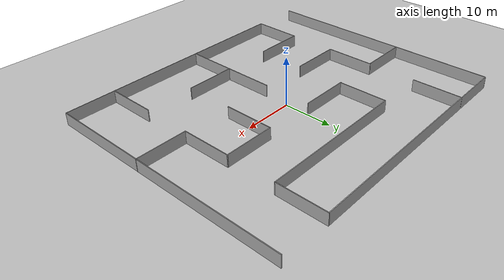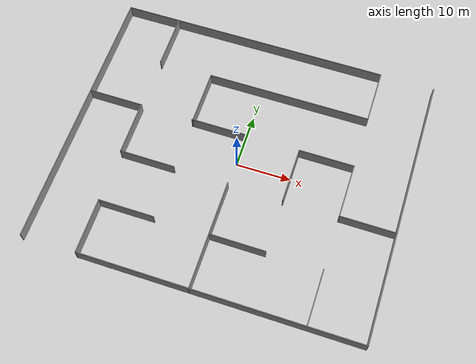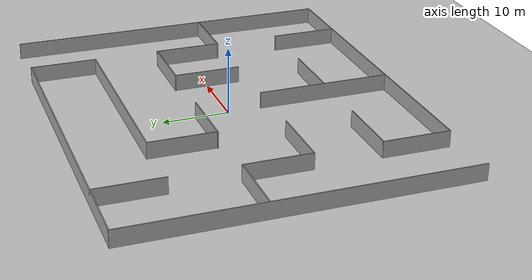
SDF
<sdf version="1.7">
 <world name="default">
  <model name="ground_plane">
   <static>1</static>
   <link name="link">
    <collision name="collision">
     <geometry><plane><normal>0 0 1</normal><size>100 100</size></plane></geometry>
     <surface>
      <contact><collide_bitmask>65535</collide_bitmask></contact>
      <friction><ode><mu>100</mu><mu2>50</mu2></ode></friction>
     </surface>
    </collision>
    <visual name="visual">
     <cast_shadows>0</cast_shadows>
     <geometry><plane><normal>0 0 1</normal><size>100 100</size></plane></geometry>
     <material>
      <script><uri>file://media/materials/scripts/gazebo.material</uri><name>Gazebo/Grey</name></script>
     </material>
    </visual>
   </link>
  </model>
  <model name="maze">
   <link name="Wall_0">
    <pose>-30 0 0 0 -0 1.5708</pose>
    <visual name="Wall_0_Visual">
     <pose>0 0 1.25 0 -0 0</pose>
     <geometry><box><size>50.15 0.15 2.5</size></box></geometry>
     <material>
      <script><uri>file://media/materials/scripts/gazebo.material</uri><name>Gazebo/Grey</name></script>
      <ambient>1 1 1 1</ambient>
      <shader type="pixel"/>
     </material>
     <meta><layer>0</layer></meta>
    </visual>
    <collision name="Wall_0_Collision">
     <pose>0 0 1.25 0 -0 0</pose>
     <geometry><box><size>50.15 0.15 2.5</size></box></geometry>
     <surface>
      <friction>
       <ode><mu>1</mu><mu2>1</mu2><fdir1>0 0 0</fdir1><slip1>0</slip1><slip2>0</slip2></ode>
       <torsional>
        <coefficient>1</coefficient>
        <patch_radius>0</patch_radius>
        <surface_radius>0</surface_radius>
        <use_patch_radius>1</use_patch_radius>
        <ode><slip>0</slip></ode>
       </torsional>
      </friction>
      <bounce><restitution_coefficient>0</restitution_coefficient><threshold>1e+06</threshold></bounce>
      <contact>
       <collide_without_contact>0</collide_without_contact>
       <collide_without_contact_bitmask>1</collide_without_contact_bitmask>
       <collide_bitmask>1</collide_bitmask>
       <ode>
        <soft_cfm>0</soft_cfm>
        <soft_erp>0.2</soft_erp>
        <kp>1e+13</kp>
        <kd>1</kd>
        <max_vel>0.01</max_vel>
        <min_depth>0</min_depth>
       </ode>
       <bullet>
        <split_impulse>1</split_impulse>
        <split_impulse_penetration_threshold>-0.01</split_impulse_penetration_threshold>
        <soft_cfm>0</soft_cfm>
        <soft_erp>0.2</soft_erp>
        <kp>1e+13</kp>
        <kd>1</kd>
       </bullet>
      </contact>
     </surface>
    </collision>
   </link>
   <link name="Wall_1">
    <pose>-5 25 0 0 -0 0</pose>
    <inertial>
     <mass>1</mass>
     <inertia><ixx>1</ixx><ixy>0</ixy><ixz>0</ixz><iyy>1</iyy><iyz>0</iyz><izz>1</izz></inertia>
    </inertial>
    <visual name="Wall_1_Visual">
     <pose>0 0 1.25 0 -0 0</pose>
     <geometry><box><size>50 0.15 2.5</size></box></geometry>
     <material>
      <script><uri>file://media/materials/scripts/gazebo.material</uri><name>Gazebo/Grey</name></script>
      <ambient>1 1 1 1</ambient>
      <shader type="pixel"><normal_map>__default__</normal_map></shader>
      <diffuse>0.7 0.7 0.7 1</diffuse>
      <specular>0.01 0.01 0.01 1</specular>
      <emissive>0 0 0 1</emissive>
     </material>
     <meta><layer>0</layer></meta>
    </visual>
    <collision name="Wall_1_Collision">
     <pose>0 0 1.25 0 -0 0</pose>
     <geometry><box><size>50 0.15 2.5</size></box></geometry>
     <surface>
      <friction>
       <ode><mu>1</mu><mu2>1</mu2><fdir1>0 0 0</fdir1><slip1>0</slip1><slip2>0</slip2></ode>
       <torsional>
        <coefficient>1</coefficient>
        <patch_radius>0</patch_radius>
        <surface_radius>0</surface_radius>
        <use_patch_radius>1</use_patch_radius>
        <ode><slip>0</slip></ode>
       </torsional>
      </friction>
      <bounce><restitution_coefficient>0</restitution_coefficient><threshold>1e+06</threshold></bounce>
      <contact>
       <collide_without_contact>0</collide_without_contact>
       <collide_without_contact_bitmask>1</collide_without_contact_bitmask>
       <collide_bitmask>1</collide_bitmask>
       <ode>
        <soft_cfm>0</soft_cfm>
        <soft_erp>0.2</soft_erp>
        <kp>1e+13</kp>
        <kd>1</kd>
        <max_vel>0.01</max_vel>
        <min_depth>0</min_depth>
       </ode>
       <bullet>
        <split_impulse>1</split_impulse>
        <split_impulse_penetration_threshold>-0.01</split_impulse_penetration_threshold>
        <soft_cfm>0</soft_cfm>
        <soft_erp>0.2</soft_erp>
        <kp>1e+13</kp>
        <kd>1</kd>
       </bullet>
      </contact>
     </surface>
    </collision>
   </link>
   <link name="Wall_10">
    <pose>-25 5 0 0 -0 0</pose>
    <visual name="Wall_10_Visual">
     <pose>0 0 1.25 0 -0 0</pose>
     <geometry><box><size>10.15 0.15 2.5</size></box></geometry>
     <material>
      <script><uri>file://media/materials/scripts/gazebo.material</uri><name>Gazebo/Grey</name></script>
      <ambient>1 1 1 1</ambient>
      <shader type="pixel"/>
     </material>
     <meta><layer>0</layer></meta>
    </visual>
    <collision name="Wall_10_Collision">
     <pose>0 0 1.25 0 -0 0</pose>
     <geometry><box><size>10.15 0.15 2.5</size></box></geometry>
     <surface>
      <friction>
       <ode><mu>1</mu><mu2>1</mu2><fdir1>0 0 0</fdir1><slip1>0</slip1><slip2>0</slip2></ode>
       <torsional>
        <coefficient>1</coefficient>
        <patch_radius>0</patch_radius>
        <surface_radius>0</surface_radius>
        <use_patch_radius>1</use_patch_radius>
        <ode><slip>0</slip></ode>
       </torsional>
      </friction>
      <bounce><restitution_coefficient>0</restitution_coefficient><threshold>1e+06</threshold></bounce>
      <contact>
       <collide_without_contact>0</collide_without_contact>
       <collide_without_contact_bitmask>1</collide_without_contact_bitmask>
       <collide_bitmask>1</collide_bitmask>
       <ode>
        <soft_cfm>0</soft_cfm>
        <soft_erp>0.2</soft_erp>
        <kp>1e+13</kp>
        <kd>1</kd>
        <max_vel>0.01</max_vel>
        <min_depth>0</min_depth>
       </ode>
       <bullet>
        <split_impulse>1</split_impulse>
        <split_impulse_penetration_threshold>-0.01</split_impulse_penetration_threshold>
        <soft_cfm>0</soft_cfm>
        <soft_erp>0.2</soft_erp>
        <kp>1e+13</kp>
        <kd>1</kd>
       </bullet>
      </contact>
     </surface>
    </collision>
   </link>
   <link name="Wall_13">
    <pose>-20 0 0 0 0 -1.5708</pose>
    <visual name="Wall_13_Visual">
     <pose>0 0 1.25 0 -0 0</pose>
     <geometry><box><size>10.15 0.15 2.5</size></box></geometry>
     <material>
      <script><uri>file://media/materials/scripts/gazebo.material</uri><name>Gazebo/Grey</name></script>
      <ambient>1 1 1 1</ambient>
      <shader type="pixel"/>
     </material>
     <meta><layer>0</layer></meta>
    </visual>
    <collision name="Wall_13_Collision">
     <pose>0 0 1.25 0 -0 0</pose>
     <geometry><box><size>10.15 0.15 2.5</size></box></geometry>
     <surface>
      <friction>
       <ode><mu>1</mu><mu2>1</mu2><fdir1>0 0 0</fdir1><slip1>0</slip1><slip2>0</slip2></ode>
       <torsional>
        <coefficient>1</coefficient>
        <patch_radius>0</patch_radius>
        <surface_radius>0</surface_radius>
        <use_patch_radius>1</use_patch_radius>
        <ode><slip>0</slip></ode>
       </torsional>
      </friction>
      <bounce><restitution_coefficient>0</restitution_coefficient><threshold>1e+06</threshold></bounce>
      <contact>
       <collide_without_contact>0</collide_without_contact>
       <collide_without_contact_bitmask>1</collide_without_contact_bitmask>
       <collide_bitmask>1</collide_bitmask>
       <ode>
        <soft_cfm>0</soft_cfm>
        <soft_erp>0.2</soft_erp>
        <kp>1e+13</kp>
        <kd>1</kd>
        <max_vel>0.01</max_vel>
        <min_depth>0</min_depth>
       </ode>
       <bullet>
        <split_impulse>1</split_impulse>
        <split_impulse_penetration_threshold>-0.01</split_impulse_penetration_threshold>
        <soft_cfm>0</soft_cfm>
        <soft_erp>0.2</soft_erp>
        <kp>1e+13</kp>
        <kd>1</kd>
       </bullet>
      </contact>
     </surface>
    </collision>
   </link>
   <link name="Wall_15">
    <pose>-15 -5 0 0 -0 0</pose>
    <visual name="Wall_15_Visual">
     <pose>0 0 1.25 0 -0 0</pose>
     <geometry><box><size>10.15 0.15 2.5</size></box></geometry>
     <material>
      <script><uri>file://media/materials/scripts/gazebo.material</uri><name>Gazebo/Grey</name></script>
      <ambient>1 1 1 1</ambient>
      <shader type="pixel"/>
     </material>
     <meta><layer>0</layer></meta>
    </visual>
    <collision name="Wall_15_Collision">
     <pose>0 0 1.25 0 -0 0</pose>
     <geometry><box><size>10.15 0.15 2.5</size></box></geometry>
     <surface>
      <friction>
       <ode><mu>1</mu><mu2>1</mu2><fdir1>0 0 0</fdir1><slip1>0</slip1><slip2>0</slip2></ode>
       <torsional>
        <coefficient>1</coefficient>
        <patch_radius>0</patch_radius>
        <surface_radius>0</surface_radius>
        <use_patch_radius>1</use_patch_radius>
        <ode><slip>0</slip></ode>
       </torsional>
      </friction>
      <bounce><restitution_coefficient>0</restitution_coefficient><threshold>1e+06</threshold></bounce>
      <contact>
       <collide_without_contact>0</collide_without_contact>
       <collide_without_contact_bitmask>1</collide_without_contact_bitmask>
       <collide_bitmask>1</collide_bitmask>
       <ode>
        <soft_cfm>0</soft_cfm>
        <soft_erp>0.2</soft_erp>
        <kp>1e+13</kp>
        <kd>1</kd>
        <max_vel>0.01</max_vel>
        <min_depth>0</min_depth>
       </ode>
       <bullet>
        <split_impulse>1</split_impulse>
        <split_impulse_penetration_threshold>-0.01</split_impulse_penetration_threshold>
        <soft_cfm>0</soft_cfm>
        <soft_erp>0.2</soft_erp>
        <kp>1e+13</kp>
        <kd>1</kd>
       </bullet>
      </contact>
     </surface>
    </collision>
   </link>
   <link name="Wall_17">
    <pose>-20 20 0 0 0 -1.5708</pose>
    <visual name="Wall_17_Visual">
     <pose>0 0 1.25 0 -0 0</pose>
     <geometry><box><size>10.15 0.15 2.5</size></box></geometry>
     <material>
      <script><uri>file://media/materials/scripts/gazebo.material</uri><name>Gazebo/Grey</name></script>
      <ambient>1 1 1 1</ambient>
      <shader type="pixel"/>
     </material>
     <meta><layer>0</layer></meta>
    </visual>
    <collision name="Wall_17_Collision">
     <pose>0 0 1.25 0 -0 0</pose>
     <geometry><box><size>10.15 0.15 2.5</size></box></geometry>
     <surface>
      <friction>
       <ode><mu>1</mu><mu2>1</mu2><fdir1>0 0 0</fdir1><slip1>0</slip1><slip2>0</slip2></ode>
       <torsional>
        <coefficient>1</coefficient>
        <patch_radius>0</patch_radius>
        <surface_radius>0</surface_radius>
        <use_patch_radius>1</use_patch_radius>
        <ode><slip>0</slip></ode>
       </torsional>
      </friction>
      <bounce><restitution_coefficient>0</restitution_coefficient><threshold>1e+06</threshold></bounce>
      <contact>
       <collide_without_contact>0</collide_without_contact>
       <collide_without_contact_bitmask>1</collide_without_contact_bitmask>
       <collide_bitmask>1</collide_bitmask>
       <ode>
        <soft_cfm>0</soft_cfm>
        <soft_erp>0.2</soft_erp>
        <kp>1e+13</kp>
        <kd>1</kd>
        <max_vel>0.01</max_vel>
        <min_depth>0</min_depth>
       </ode>
       <bullet>
        <split_impulse>1</split_impulse>
        <split_impulse_penetration_threshold>-0.01</split_impulse_penetration_threshold>
        <soft_cfm>0</soft_cfm>
        <soft_erp>0.2</soft_erp>
        <kp>1e+13</kp>
        <kd>1</kd>
       </bullet>
      </contact>
     </surface>
    </collision>
   </link>
   <link name="Wall_19">
    <pose>-1e-06 -15 0 0 -0 1.5708</pose>
    <visual name="Wall_19_Visual">
     <pose>0 0 1.25 0 -0 0</pose>
     <geometry><box><size>20.15 0.15 2.5</size></box></geometry>
     <material>
      <script><uri>file://media/materials/scripts/gazebo.material</uri><name>Gazebo/Grey</name></script>
      <ambient>1 1 1 1</ambient>
      <shader type="pixel"/>
     </material>
     <meta><layer>0</layer></meta>
    </visual>
    <collision name="Wall_19_Collision">
     <pose>0 0 1.25 0 -0 0</pose>
     <geometry><box><size>20.15 0.15 2.5</size></box></geometry>
     <surface>
      <friction>
       <ode><mu>1</mu><mu2>1</mu2><fdir1>0 0 0</fdir1><slip1>0</slip1><slip2>0</slip2></ode>
       <torsional>
        <coefficient>1</coefficient>
        <patch_radius>0</patch_radius>
        <surface_radius>0</surface_radius>
        <use_patch_radius>1</use_patch_radius>
        <ode><slip>0</slip></ode>
       </torsional>
      </friction>
      <bounce><restitution_coefficient>0</restitution_coefficient><threshold>1e+06</threshold></bounce>
      <contact>
       <collide_without_contact>0</collide_without_contact>
       <collide_without_contact_bitmask>1</collide_without_contact_bitmask>
       <collide_bitmask>1</collide_bitmask>
       <ode>
        <soft_cfm>0</soft_cfm>
        <soft_erp>0.2</soft_erp>
        <kp>1e+13</kp>
        <kd>1</kd>
        <max_vel>0.01</max_vel>
        <min_depth>0</min_depth>
       </ode>
       <bullet>
        <split_impulse>1</split_impulse>
        <split_impulse_penetration_threshold>-0.01</split_impulse_penetration_threshold>
        <soft_cfm>0</soft_cfm>
        <soft_erp>0.2</soft_erp>
        <kp>1e+13</kp>
        <kd>1</kd>
       </bullet>
      </contact>
     </surface>
    </collision>
   </link>
   <link name="Wall_2">
    <pose>30 0 0 0 0 -1.5708</pose>
    <visual name="Wall_2_Visual">
     <pose>0 0 1.25 0 -0 0</pose>
     <geometry><box><size>50.15 0.15 2.5</size></box></geometry>
     <material>
      <script><uri>file://media/materials/scripts/gazebo.material</uri><name>Gazebo/Grey</name></script>
      <ambient>1 1 1 1</ambient>
      <shader type="pixel"/>
     </material>
     <meta><layer>0</layer></meta>
    </visual>
    <collision name="Wall_2_Collision">
     <pose>0 0 1.25 0 -0 0</pose>
     <geometry><box><size>50.15 0.15 2.5</size></box></geometry>
     <surface>
      <friction>
       <ode><mu>1</mu><mu2>1</mu2><fdir1>0 0 0</fdir1><slip1>0</slip1><slip2>0</slip2></ode>
       <torsional>
        <coefficient>1</coefficient>
        <patch_radius>0</patch_radius>
        <surface_radius>0</surface_radius>
        <use_patch_radius>1</use_patch_radius>
        <ode><slip>0</slip></ode>
       </torsional>
      </friction>
      <bounce><restitution_coefficient>0</restitution_coefficient><threshold>1e+06</threshold></bounce>
      <contact>
       <collide_without_contact>0</collide_without_contact>
       <collide_without_contact_bitmask>1</collide_without_contact_bitmask>
       <collide_bitmask>1</collide_bitmask>
       <ode>
        <soft_cfm>0</soft_cfm>
        <soft_erp>0.2</soft_erp>
        <kp>1e+13</kp>
        <kd>1</kd>
        <max_vel>0.01</max_vel>
        <min_depth>0</min_depth>
       </ode>
       <bullet>
        <split_impulse>1</split_impulse>
        <split_impulse_penetration_threshold>-0.01</split_impulse_penetration_threshold>
        <soft_cfm>0</soft_cfm>
        <soft_erp>0.2</soft_erp>
        <kp>1e+13</kp>
        <kd>1</kd>
       </bullet>
      </contact>
     </surface>
    </collision>
   </link>
   <link name="Wall_21">
    <pose>20 -20 0 0 -0 1.5708</pose>
    <visual name="Wall_21_Visual">
     <pose>0 0 1.25 0 -0 0</pose>
     <geometry><box><size>10.15 0.15 2.5</size></box></geometry>
     <material>
      <script><uri>file://media/materials/scripts/gazebo.material</uri><name>Gazebo/Grey</name></script>
      <ambient>1 1 1 1</ambient>
      <shader type="pixel"/>
     </material>
     <meta><layer>0</layer></meta>
    </visual>
    <collision name="Wall_21_Collision">
     <pose>0 0 1.25 0 -0 0</pose>
     <geometry><box><size>10.15 0.15 2.5</size></box></geometry>
     <surface>
      <friction>
       <ode><mu>1</mu><mu2>1</mu2><fdir1>0 0 0</fdir1><slip1>0</slip1><slip2>0</slip2></ode>
       <torsional>
        <coefficient>1</coefficient>
        <patch_radius>0</patch_radius>
        <surface_radius>0</surface_radius>
        <use_patch_radius>1</use_patch_radius>
        <ode><slip>0</slip></ode>
       </torsional>
      </friction>
      <bounce><restitution_coefficient>0</restitution_coefficient><threshold>1e+06</threshold></bounce>
      <contact>
       <collide_without_contact>0</collide_without_contact>
       <collide_without_contact_bitmask>1</collide_without_contact_bitmask>
       <collide_bitmask>1</collide_bitmask>
       <ode>
        <soft_cfm>0</soft_cfm>
        <soft_erp>0.2</soft_erp>
        <kp>1e+13</kp>
        <kd>1</kd>
        <max_vel>0.01</max_vel>
        <min_depth>0</min_depth>
       </ode>
       <bullet>
        <split_impulse>1</split_impulse>
        <split_impulse_penetration_threshold>-0.01</split_impulse_penetration_threshold>
        <soft_cfm>0</soft_cfm>
        <soft_erp>0.2</soft_erp>
        <kp>1e+13</kp>
        <kd>1</kd>
       </bullet>
      </contact>
     </surface>
    </collision>
   </link>
   <link name="Wall_23">
    <pose>10 0 0 0 0 -1.5708</pose>
    <visual name="Wall_23_Visual">
     <pose>0 0 1.25 0 -0 0</pose>
     <geometry><box><size>10.15 0.15 2.5</size></box></geometry>
     <material>
      <script><uri>file://media/materials/scripts/gazebo.material</uri><name>Gazebo/Grey</name></script>
      <ambient>1 1 1 1</ambient>
      <shader type="pixel"/>
     </material>
     <meta><layer>0</layer></meta>
    </visual>
    <collision name="Wall_23_Collision">
     <pose>0 0 1.25 0 -0 0</pose>
     <geometry><box><size>10.15 0.15 2.5</size></box></geometry>
     <surface>
      <friction>
       <ode><mu>1</mu><mu2>1</mu2><fdir1>0 0 0</fdir1><slip1>0</slip1><slip2>0</slip2></ode>
       <torsional>
        <coefficient>1</coefficient>
        <patch_radius>0</patch_radius>
        <surface_radius>0</surface_radius>
        <use_patch_radius>1</use_patch_radius>
        <ode><slip>0</slip></ode>
       </torsional>
      </friction>
      <bounce><restitution_coefficient>0</restitution_coefficient><threshold>1e+06</threshold></bounce>
      <contact>
       <collide_without_contact>0</collide_without_contact>
       <collide_without_contact_bitmask>1</collide_without_contact_bitmask>
       <collide_bitmask>1</collide_bitmask>
       <ode>
        <soft_cfm>0</soft_cfm>
        <soft_erp>0.2</soft_erp>
        <kp>1e+13</kp>
        <kd>1</kd>
        <max_vel>0.01</max_vel>
        <min_depth>0</min_depth>
       </ode>
       <bullet>
        <split_impulse>1</split_impulse>
        <split_impulse_penetration_threshold>-0.01</split_impulse_penetration_threshold>
        <soft_cfm>0</soft_cfm>
        <soft_erp>0.2</soft_erp>
        <kp>1e+13</kp>
        <kd>1</kd>
       </bullet>
      </contact>
     </surface>
    </collision>
   </link>
   <link name="Wall_25">
    <pose>5 -15 0 0 -0 0</pose>
    <visual name="Wall_25_Visual">
     <pose>0 0 1.25 0 -0 0</pose>
     <geometry><box><size>10.15 0.15 2.5</size></box></geometry>
     <material>
      <script><uri>file://media/materials/scripts/gazebo.material</uri><name>Gazebo/Grey</name></script>
      <ambient>1 1 1 1</ambient>
      <shader type="pixel"/>
     </material>
     <meta><layer>0</layer></meta>
    </visual>
    <collision name="Wall_25_Collision">
     <pose>0 0 1.25 0 -0 0</pose>
     <geometry><box><size>10.15 0.15 2.5</size></box></geometry>
     <surface>
      <friction>
       <ode><mu>1</mu><mu2>1</mu2><fdir1>0 0 0</fdir1><slip1>0</slip1><slip2>0</slip2></ode>
       <torsional>
        <coefficient>1</coefficient>
        <patch_radius>0</patch_radius>
        <surface_radius>0</surface_radius>
        <use_patch_radius>1</use_patch_radius>
        <ode><slip>0</slip></ode>
       </torsional>
      </friction>
      <bounce><restitution_coefficient>0</restitution_coefficient><threshold>1e+06</threshold></bounce>
      <contact>
       <collide_without_contact>0</collide_without_contact>
       <collide_without_contact_bitmask>1</collide_without_contact_bitmask>
       <collide_bitmask>1</collide_bitmask>
       <ode>
        <soft_cfm>0</soft_cfm>
        <soft_erp>0.2</soft_erp>
        <kp>1e+13</kp>
        <kd>1</kd>
        <max_vel>0.01</max_vel>
        <min_depth>0</min_depth>
       </ode>
       <bullet>
        <split_impulse>1</split_impulse>
        <split_impulse_penetration_threshold>-0.01</split_impulse_penetration_threshold>
        <soft_cfm>0</soft_cfm>
        <soft_erp>0.2</soft_erp>
        <kp>1e+13</kp>
        <kd>1</kd>
       </bullet>
      </contact>
     </surface>
    </collision>
   </link>
   <link name="Wall_27">
    <pose>15 5 0 0 -0 3.14159</pose>
    <visual name="Wall_27_Visual">
     <pose>0 0 1.25 0 -0 0</pose>
     <geometry><box><size>10.15 0.15 2.5</size></box></geometry>
     <material>
      <script><uri>file://media/materials/scripts/gazebo.material</uri><name>Gazebo/Grey</name></script>
      <ambient>1 1 1 1</ambient>
      <shader type="pixel"/>
     </material>
     <meta><layer>0</layer></meta>
    </visual>
    <collision name="Wall_27_Collision">
     <pose>0 0 1.25 0 -0 0</pose>
     <geometry><box><size>10.15 0.15 2.5</size></box></geometry>
     <surface>
      <friction>
       <ode><mu>1</mu><mu2>1</mu2><fdir1>0 0 0</fdir1><slip1>0</slip1><slip2>0</slip2></ode>
       <torsional>
        <coefficient>1</coefficient>
        <patch_radius>0</patch_radius>
        <surface_radius>0</surface_radius>
        <use_patch_radius>1</use_patch_radius>
        <ode><slip>0</slip></ode>
       </torsional>
      </friction>
      <bounce><restitution_coefficient>0</restitution_coefficient><threshold>1e+06</threshold></bounce>
      <contact>
       <collide_without_contact>0</collide_without_contact>
       <collide_without_contact_bitmask>1</collide_without_contact_bitmask>
       <collide_bitmask>1</collide_bitmask>
       <ode>
        <soft_cfm>0</soft_cfm>
        <soft_erp>0.2</soft_erp>
        <kp>1e+13</kp>
        <kd>1</kd>
        <max_vel>0.01</max_vel>
        <min_depth>0</min_depth>
       </ode>
       <bullet>
        <split_impulse>1</split_impulse>
        <split_impulse_penetration_threshold>-0.01</split_impulse_penetration_threshold>
        <soft_cfm>0</soft_cfm>
        <soft_erp>0.2</soft_erp>
        <kp>1e+13</kp>
        <kd>1</kd>
       </bullet>
      </contact>
     </surface>
    </collision>
   </link>
   <link name="Wall_29">
    <pose>20 0 0 0 -0 1.5708</pose>
    <visual name="Wall_29_Visual">
     <pose>0 0 1.25 0 -0 0</pose>
     <geometry><box><size>10.15 0.15 2.5</size></box></geometry>
     <material>
      <script><uri>file://media/materials/scripts/gazebo.material</uri><name>Gazebo/Grey</name></script>
      <ambient>1 1 1 1</ambient>
      <shader type="pixel"/>
     </material>
     <meta><layer>0</layer></meta>
    </visual>
    <collision name="Wall_29_Collision">
     <pose>0 0 1.25 0 -0 0</pose>
     <geometry><box><size>10.15 0.15 2.5</size></box></geometry>
     <surface>
      <friction>
       <ode><mu>1</mu><mu2>1</mu2><fdir1>0 0 0</fdir1><slip1>0</slip1><slip2>0</slip2></ode>
       <torsional>
        <coefficient>1</coefficient>
        <patch_radius>0</patch_radius>
        <surface_radius>0</surface_radius>
        <use_patch_radius>1</use_patch_radius>
        <ode><slip>0</slip></ode>
       </torsional>
      </friction>
      <bounce><restitution_coefficient>0</restitution_coefficient><threshold>1e+06</threshold></bounce>
      <contact>
       <collide_without_contact>0</collide_without_contact>
       <collide_without_contact_bitmask>1</collide_without_contact_bitmask>
       <collide_bitmask>1</collide_bitmask>
       <ode>
        <soft_cfm>0</soft_cfm>
        <soft_erp>0.2</soft_erp>
        <kp>1e+13</kp>
        <kd>1</kd>
        <max_vel>0.01</max_vel>
        <min_depth>0</min_depth>
       </ode>
       <bullet>
        <split_impulse>1</split_impulse>
        <split_impulse_penetration_threshold>-0.01</split_impulse_penetration_threshold>
        <soft_cfm>0</soft_cfm>
        <soft_erp>0.2</soft_erp>
        <kp>1e+13</kp>
        <kd>1</kd>
       </bullet>
      </contact>
     </surface>
    </collision>
   </link>
   <link name="Wall_3">
    <pose>5 -25 0 0 -0 3.14159</pose>
    <inertial>
     <mass>1</mass>
     <inertia><ixx>1</ixx><ixy>0</ixy><ixz>0</ixz><iyy>1</iyy><iyz>0</iyz><izz>1</izz></inertia>
    </inertial>
    <visual name="Wall_3_Visual">
     <pose>0 0 1.25 0 -0 0</pose>
     <geometry><box><size>50 0.15 2.5</size></box></geometry>
     <material>
      <script><uri>file://media/materials/scripts/gazebo.material</uri><name>Gazebo/Grey</name></script>
      <ambient>1 1 1 1</ambient>
      <shader type="pixel"><normal_map>__default__</normal_map></shader>
      <diffuse>0.7 0.7 0.7 1</diffuse>
      <specular>0.01 0.01 0.01 1</specular>
      <emissive>0 0 0 1</emissive>
     </material>
     <meta><layer>0</layer></meta>
    </visual>
    <collision name="Wall_3_Collision">
     <pose>0 0 1.25 0 -0 0</pose>
     <geometry><box><size>50 0.15 2.5</size></box></geometry>
     <surface>
      <friction>
       <ode><mu>1</mu><mu2>1</mu2><fdir1>0 0 0</fdir1><slip1>0</slip1><slip2>0</slip2></ode>
       <torsional>
        <coefficient>1</coefficient>
        <patch_radius>0</patch_radius>
        <surface_radius>0</surface_radius>
        <use_patch_radius>1</use_patch_radius>
        <ode><slip>0</slip></ode>
       </torsional>
      </friction>
      <bounce><restitution_coefficient>0</restitution_coefficient><threshold>1e+06</threshold></bounce>
      <contact>
       <collide_without_contact>0</collide_without_contact>
       <collide_without_contact_bitmask>1</collide_without_contact_bitmask>
       <collide_bitmask>1</collide_bitmask>
       <ode>
        <soft_cfm>0</soft_cfm>
        <soft_erp>0.2</soft_erp>
        <kp>1e+13</kp>
        <kd>1</kd>
        <max_vel>0.01</max_vel>
        <min_depth>0</min_depth>
       </ode>
       <bullet>
        <split_impulse>1</split_impulse>
        <split_impulse_penetration_threshold>-0.01</split_impulse_penetration_threshold>
        <soft_cfm>0</soft_cfm>
        <soft_erp>0.2</soft_erp>
        <kp>1e+13</kp>
        <kd>1</kd>
       </bullet>
      </contact>
     </surface>
    </collision>
   </link>
   <link name="Wall_31">
    <pose>20 20 0 0 0 -1.5708</pose>
    <visual name="Wall_31_Visual">
     <pose>0 0 1.25 0 -0 0</pose>
     <geometry><box><size>10.15 0.15 2.5</size></box></geometry>
     <material>
      <script><uri>file://media/materials/scripts/gazebo.material</uri><name>Gazebo/Grey</name></script>
      <ambient>1 1 1 1</ambient>
      <shader type="pixel"/>
     </material>
     <meta><layer>0</layer></meta>
    </visual>
    <collision name="Wall_31_Collision">
     <pose>0 0 1.25 0 -0 0</pose>
     <geometry><box><size>10.15 0.15 2.5</size></box></geometry>
     <surface>
      <friction>
       <ode><mu>1</mu><mu2>1</mu2><fdir1>0 0 0</fdir1><slip1>0</slip1><slip2>0</slip2></ode>
       <torsional>
        <coefficient>1</coefficient>
        <patch_radius>0</patch_radius>
        <surface_radius>0</surface_radius>
        <use_patch_radius>1</use_patch_radius>
        <ode><slip>0</slip></ode>
       </torsional>
      </friction>
      <bounce><restitution_coefficient>0</restitution_coefficient><threshold>1e+06</threshold></bounce>
      <contact>
       <collide_without_contact>0</collide_without_contact>
       <collide_without_contact_bitmask>1</collide_without_contact_bitmask>
       <collide_bitmask>1</collide_bitmask>
       <ode>
        <soft_cfm>0</soft_cfm>
        <soft_erp>0.2</soft_erp>
        <kp>1e+13</kp>
        <kd>1</kd>
        <max_vel>0.01</max_vel>
        <min_depth>0</min_depth>
       </ode>
       <bullet>
        <split_impulse>1</split_impulse>
        <split_impulse_penetration_threshold>-0.01</split_impulse_penetration_threshold>
        <soft_cfm>0</soft_cfm>
        <soft_erp>0.2</soft_erp>
        <kp>1e+13</kp>
        <kd>1</kd>
       </bullet>
      </contact>
     </surface>
    </collision>
   </link>
   <link name="Wall_33">
    <pose>25 -5 0 0 -0 3.14159</pose>
    <visual name="Wall_33_Visual">
     <pose>0 0 1.25 0 -0 0</pose>
     <geometry><box><size>10.15 0.15 2.5</size></box></geometry>
     <material>
      <script><uri>file://media/materials/scripts/gazebo.material</uri><name>Gazebo/Grey</name></script>
      <ambient>1 1 1 1</ambient>
      <shader type="pixel"/>
     </material>
     <meta><layer>0</layer></meta>
    </visual>
    <collision name="Wall_33_Collision">
     <pose>0 0 1.25 0 -0 0</pose>
     <geometry><box><size>10.15 0.15 2.5</size></box></geometry>
     <surface>
      <friction>
       <ode><mu>1</mu><mu2>1</mu2><fdir1>0 0 0</fdir1><slip1>0</slip1><slip2>0</slip2></ode>
       <torsional>
        <coefficient>1</coefficient>
        <patch_radius>0</patch_radius>
        <surface_radius>0</surface_radius>
        <use_patch_radius>1</use_patch_radius>
        <ode><slip>0</slip></ode>
       </torsional>
      </friction>
      <bounce><restitution_coefficient>0</restitution_coefficient><threshold>1e+06</threshold></bounce>
      <contact>
       <collide_without_contact>0</collide_without_contact>
       <collide_without_contact_bitmask>1</collide_without_contact_bitmask>
       <collide_bitmask>1</collide_bitmask>
       <ode>
        <soft_cfm>0</soft_cfm>
        <soft_erp>0.2</soft_erp>
        <kp>1e+13</kp>
        <kd>1</kd>
        <max_vel>0.01</max_vel>
        <min_depth>0</min_depth>
       </ode>
       <bullet>
        <split_impulse>1</split_impulse>
        <split_impulse_penetration_threshold>-0.01</split_impulse_penetration_threshold>
        <soft_cfm>0</soft_cfm>
        <soft_erp>0.2</soft_erp>
        <kp>1e+13</kp>
        <kd>1</kd>
       </bullet>
      </contact>
     </surface>
    </collision>
   </link>
   <link name="Wall_35">
    <pose>-5.14232 5 0 0 -0 3.14159</pose>
    <visual name="Wall_35_Visual">
     <pose>0 0 1.25 0 -0 0</pose>
     <geometry><box><size>10.15 0.15 2.5</size></box></geometry>
     <material>
      <script><uri>file://media/materials/scripts/gazebo.material</uri><name>Gazebo/Grey</name></script>
      <ambient>1 1 1 1</ambient>
      <shader type="pixel"/>
     </material>
     <meta><layer>0</layer></meta>
    </visual>
    <collision name="Wall_35_Collision">
     <pose>0 0 1.25 0 -0 0</pose>
     <geometry><box><size>10.15 0.15 2.5</size></box></geometry>
     <surface>
      <friction>
       <ode><mu>1</mu><mu2>1</mu2><fdir1>0 0 0</fdir1><slip1>0</slip1><slip2>0</slip2></ode>
       <torsional>
        <coefficient>1</coefficient>
        <patch_radius>0</patch_radius>
        <surface_radius>0</surface_radius>
        <use_patch_radius>1</use_patch_radius>
        <ode><slip>0</slip></ode>
       </torsional>
      </friction>
      <bounce><restitution_coefficient>0</restitution_coefficient><threshold>1e+06</threshold></bounce>
      <contact>
       <collide_without_contact>0</collide_without_contact>
       <collide_without_contact_bitmask>1</collide_without_contact_bitmask>
       <collide_bitmask>1</collide_bitmask>
       <ode>
        <soft_cfm>0</soft_cfm>
        <soft_erp>0.2</soft_erp>
        <kp>1e+13</kp>
        <kd>1</kd>
        <max_vel>0.01</max_vel>
        <min_depth>0</min_depth>
       </ode>
       <bullet>
        <split_impulse>1</split_impulse>
        <split_impulse_penetration_threshold>-0.01</split_impulse_penetration_threshold>
        <soft_cfm>0</soft_cfm>
        <soft_erp>0.2</soft_erp>
        <kp>1e+13</kp>
        <kd>1</kd>
       </bullet>
      </contact>
     </surface>
    </collision>
   </link>
   <link name="Wall_39">
    <pose>5 15 0 0 -0 3.14159</pose>
    <visual name="Wall_39_Visual">
     <pose>0 0 1.25 0 -0 0</pose>
     <geometry><box><size>30.15 0.15 2.5</size></box></geometry>
     <material>
      <script><uri>file://media/materials/scripts/gazebo.material</uri><name>Gazebo/Grey</name></script>
      <ambient>1 1 1 1</ambient>
      <shader type="pixel"/>
     </material>
     <meta><layer>0</layer></meta>
    </visual>
    <collision name="Wall_39_Collision">
     <pose>0 0 1.25 0 -0 0</pose>
     <geometry><box><size>30.15 0.15 2.5</size></box></geometry>
     <surface>
      <friction>
       <ode><mu>1</mu><mu2>1</mu2><fdir1>0 0 0</fdir1><slip1>0</slip1><slip2>0</slip2></ode>
       <torsional>
        <coefficient>1</coefficient>
        <patch_radius>0</patch_radius>
        <surface_radius>0</surface_radius>
        <use_patch_radius>1</use_patch_radius>
        <ode><slip>0</slip></ode>
       </torsional>
      </friction>
      <bounce><restitution_coefficient>0</restitution_coefficient><threshold>1e+06</threshold></bounce>
      <contact>
       <collide_without_contact>0</collide_without_contact>
       <collide_without_contact_bitmask>1</collide_without_contact_bitmask>
       <collide_bitmask>1</collide_bitmask>
       <ode>
        <soft_cfm>0</soft_cfm>
        <soft_erp>0.2</soft_erp>
        <kp>1e+13</kp>
        <kd>1</kd>
        <max_vel>0.01</max_vel>
        <min_depth>0</min_depth>
       </ode>
       <bullet>
        <split_impulse>1</split_impulse>
        <split_impulse_penetration_threshold>-0.01</split_impulse_penetration_threshold>
        <soft_cfm>0</soft_cfm>
        <soft_erp>0.2</soft_erp>
        <kp>1e+13</kp>
        <kd>1</kd>
       </bullet>
      </contact>
     </surface>
    </collision>
   </link>
   <link name="Wall_41">
    <pose>-10 10 0 0 -0 1.5708</pose>
    <visual name="Wall_41_Visual">
     <pose>0 0 1.25 0 -0 0</pose>
     <geometry><box><size>10.15 0.15 2.5</size></box></geometry>
     <material>
      <script><uri>file://media/materials/scripts/gazebo.material</uri><name>Gazebo/Grey</name></script>
      <ambient>1 1 1 1</ambient>
      <shader type="pixel"/>
     </material>
     <meta><layer>0</layer></meta>
    </visual>
    <collision name="Wall_41_Collision">
     <pose>0 0 1.25 0 -0 0</pose>
     <geometry><box><size>10.15 0.15 2.5</size></box></geometry>
     <surface>
      <friction>
       <ode><mu>1</mu><mu2>1</mu2><fdir1>0 0 0</fdir1><slip1>0</slip1><slip2>0</slip2></ode>
       <torsional>
        <coefficient>1</coefficient>
        <patch_radius>0</patch_radius>
        <surface_radius>0</surface_radius>
        <use_patch_radius>1</use_patch_radius>
        <ode><slip>0</slip></ode>
       </torsional>
      </friction>
      <bounce><restitution_coefficient>0</restitution_coefficient><threshold>1e+06</threshold></bounce>
      <contact>
       <collide_without_contact>0</collide_without_contact>
       <collide_without_contact_bitmask>1</collide_without_contact_bitmask>
       <collide_bitmask>1</collide_bitmask>
       <ode>
        <soft_cfm>0</soft_cfm>
        <soft_erp>0.2</soft_erp>
        <kp>1e+13</kp>
        <kd>1</kd>
        <max_vel>0.01</max_vel>
        <min_depth>0</min_depth>
       </ode>
       <bullet>
        <split_impulse>1</split_impulse>
        <split_impulse_penetration_threshold>-0.01</split_impulse_penetration_threshold>
        <soft_cfm>0</soft_cfm>
        <soft_erp>0.2</soft_erp>
        <kp>1e+13</kp>
        <kd>1</kd>
       </bullet>
      </contact>
     </surface>
    </collision>
   </link>
   <link name="Wall_5">
    <pose>-20 -20 0 0 -0 1.5708</pose>
    <visual name="Wall_5_Visual">
     <pose>0 0 1.25 0 -0 0</pose>
     <geometry><box><size>10.15 0.15 2.5</size></box></geometry>
     <material>
      <script><uri>file://media/materials/scripts/gazebo.material</uri><name>Gazebo/Grey</name></script>
      <ambient>1 1 1 1</ambient>
      <shader type="pixel"/>
     </material>
     <meta><layer>0</layer></meta>
    </visual>
    <collision name="Wall_5_Collision">
     <pose>0 0 1.25 0 -0 0</pose>
     <geometry><box><size>10.15 0.15 2.5</size></box></geometry>
     <surface>
      <friction>
       <ode><mu>1</mu><mu2>1</mu2><fdir1>0 0 0</fdir1><slip1>0</slip1><slip2>0</slip2></ode>
       <torsional>
        <coefficient>1</coefficient>
        <patch_radius>0</patch_radius>
        <surface_radius>0</surface_radius>
        <use_patch_radius>1</use_patch_radius>
        <ode><slip>0</slip></ode>
       </torsional>
      </friction>
      <bounce><restitution_coefficient>0</restitution_coefficient><threshold>1e+06</threshold></bounce>
      <contact>
       <collide_without_contact>0</collide_without_contact>
       <collide_without_contact_bitmask>1</collide_without_contact_bitmask>
       <collide_bitmask>1</collide_bitmask>
       <ode>
        <soft_cfm>0</soft_cfm>
        <soft_erp>0.2</soft_erp>
        <kp>1e+13</kp>
        <kd>1</kd>
        <max_vel>0.01</max_vel>
        <min_depth>0</min_depth>
       </ode>
       <bullet>
        <split_impulse>1</split_impulse>
        <split_impulse_penetration_threshold>-0.01</split_impulse_penetration_threshold>
        <soft_cfm>0</soft_cfm>
        <soft_erp>0.2</soft_erp>
        <kp>1e+13</kp>
        <kd>1</kd>
       </bullet>
      </contact>
     </surface>
    </collision>
   </link>
   <link name="Wall_8">
    <pose>-15 -15 0 0 -0 0</pose>
    <visual name="Wall_8_Visual">
     <pose>0 0 1.25 0 -0 0</pose>
     <geometry><box><size>10.15 0.15 2.5</size></box></geometry>
     <material>
      <script><uri>file://media/materials/scripts/gazebo.material</uri><name>Gazebo/Grey</name></script>
      <ambient>1 1 1 1</ambient>
      <shader type="pixel"/>
     </material>
     <meta><layer>0</layer></meta>
    </visual>
    <collision name="Wall_8_Collision">
     <pose>0 0 1.25 0 -0 0</pose>
     <geometry><box><size>10.15 0.15 2.5</size></box></geometry>
     <surface>
      <friction>
       <ode><mu>1</mu><mu2>1</mu2><fdir1>0 0 0</fdir1><slip1>0</slip1><slip2>0</slip2></ode>
       <torsional>
        <coefficient>1</coefficient>
        <patch_radius>0</patch_radius>
        <surface_radius>0</surface_radius>
        <use_patch_radius>1</use_patch_radius>
        <ode><slip>0</slip></ode>
       </torsional>
      </friction>
      <bounce><restitution_coefficient>0</restitution_coefficient><threshold>1e+06</threshold></bounce>
      <contact>
       <collide_without_contact>0</collide_without_contact>
       <collide_without_contact_bitmask>1</collide_without_contact_bitmask>
       <collide_bitmask>1</collide_bitmask>
       <ode>
        <soft_cfm>0</soft_cfm>
        <soft_erp>0.2</soft_erp>
        <kp>1e+13</kp>
        <kd>1</kd>
        <max_vel>0.01</max_vel>
        <min_depth>0</min_depth>
       </ode>
       <bullet>
        <split_impulse>1</split_impulse>
        <split_impulse_penetration_threshold>-0.01</split_impulse_penetration_threshold>
        <soft_cfm>0</soft_cfm>
        <soft_erp>0.2</soft_erp>
        <kp>1e+13</kp>
        <kd>1</kd>
       </bullet>
      </contact>
     </surface>
    </collision>
   </link>
   <static>1</static>
   <pose>0.01023 -0.010196 0 0 -0 0</pose>
  </model>
 </world>
</sdf>
